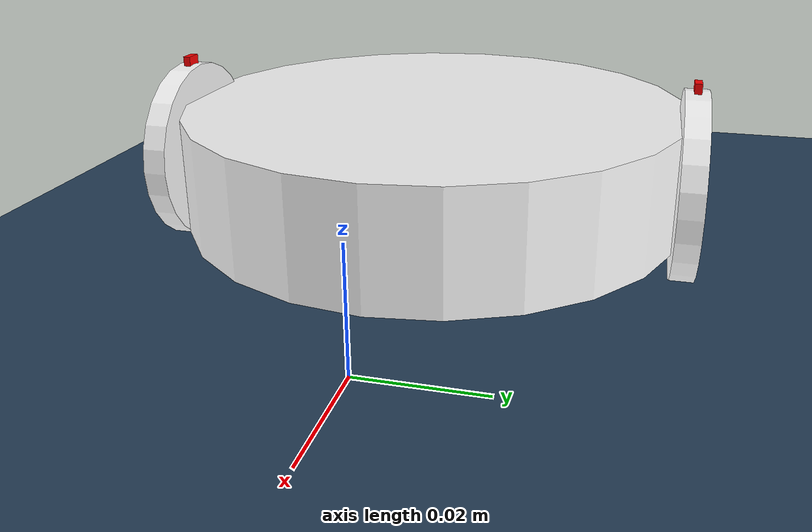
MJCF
<mujoco model="pololu">
  <compiler angle="radian" inertiafromgeom="true"/>

  <!-- Keep your timestep and integrator -->
  <option timestep="0.002" integrator="implicit" gravity="0 0 -9.81"/>

  <visual>
    <global azimuth="45" elevation="-30"/>
    <headlight ambient="0.3 0.3 0.3" diffuse="0.6 0.6 0.6"/>
  </visual>

  <asset>
    <texture type="skybox" builtin="gradient" rgb1="0.3 0.5 0.7" rgb2="0 0 0" width="512" height="3072"/>
    <texture type="2d" name="groundplane" builtin="checker" mark="edge"
             rgb1="0.2 0.3 0.4" rgb2="0.1 0.2 0.3" markrgb="0.8 0.8 0.8"
             width="300" height="300"/>
    <material name="groundplane" texture="groundplane" texuniform="true" texrepeat="10 10" reflectance="0"/>
    <!-- Wheel texture to visualize rotation -->
    <texture name="wheel_tex" type="2d" builtin="checker"
            rgb1="0.05 0.05 0.05" rgb2="0.9 0.9 0.9"
            width="256" height="256"/>

    <material name="wheel_mat" texture="wheel_tex"
              texrepeat="6 1" texuniform="true" reflectance="0.0"/>
  </asset>

  <worldbody>
    <!-- Slightly soft contact to behave well -->
    <geom name="floor" type="plane" size="0 0 0.05" material="groundplane"
          solref="0.002 1" solimp="0.95 0.99 0.001"/>

    <light pos="0 0 1.5" dir="0 0 -1" directional="true"/>

    <!-- Wheel radius is 0.016, so ~0.0161 keeps only 0.1mm clearance -->
    <body name="chassis" pos="-0.0445 0 0.0161">
      <freejoint name="root"/>
      <camera name="track_cam" mode="track" pos="0 -0.6 0.25" xyaxes="1 0 0 0 0.6 1"/>

      <!-- Main chassis body-->
      <geom name="body" type="cylinder"
            size="0.0445 0.01"
            pos="-0.006 0 0.0"
            rgba="1.0 1.0 1.0 1.0"
            mass="0.140"/>

      <!-- Extra rear mass ("battery pack") to move COM back without changing geometry much -->
      <geom name="rear_mass" type="box"
            size="0.018 0.020 0.008"
            pos="-0.030 0 0.006"
            rgba="0.2 0.2 0.2 0.0"
            mass="0.040"/>

      <!-- Left wheel -->
      <body name="left_wheel" pos="0.0 0.0445 0.0">
        <joint name="left_wheel_joint" type="hinge" axis="0 1 0"
               damping="0.2" armature="0.005" frictionloss="0.02"/>
        <geom name="left_wheel_geom" type="cylinder" size="0.016 0.002"
              rgba="1 1 1 1" euler="1.5708 0 0"
              material="wheel_mat"
              friction="0.7 0.001 0.0001"
              />
        <!-- Visual marker to show wheel rotation (no collisions) -->
        <geom name="left_wheel_marker" type="box"
              size="0.0015 0.0006 0.0015"
              pos="0 0 0.016"
              rgba="1 0 0 1"
              contype="0" conaffinity="0"/>

      </body>

      <!-- Right wheel -->
      <body name="right_wheel" pos="0.0 -0.0445 0.0">
        <joint name="right_wheel_joint" type="hinge" axis="0 1 0"
               damping="0.2" armature="0.005" frictionloss="0.02"/>
        <geom name="right_wheel_geom" type="cylinder" size="0.016 0.002"
              rgba="1 1 1 1" euler="1.5708 0 0"
              material="wheel_mat"
              friction="0.7 0.001 0.0001"
              />
          <!-- Visual marker to show wheel rotation (no collisions) -->
          <geom name="right_wheel_marker" type="box"
            size="0.0015 0.0006 0.0015"
            pos="0 0 0.016"
            rgba="1 0 0 1"
            contype="0" conaffinity="0"/>

      </body>
      <body name="caster" pos="-0.041 0.0 -0.01">
        <geom name="caster_geom" type="sphere" size="0.0055"
              rgba="0.5 0.5 0.5 1"
              friction="0.0 0.0 0.0"
              />
      </body>

    </body>
  </worldbody>

  <actuator>
    <velocity name="left_motor"  joint="left_wheel_joint"  kv="0.5" ctrlrange="-157.08 157.08"/>
    <velocity name="right_motor" joint="right_wheel_joint" kv="0.5" ctrlrange="-157.08 157.08"/>
  </actuator>

</mujoco>
